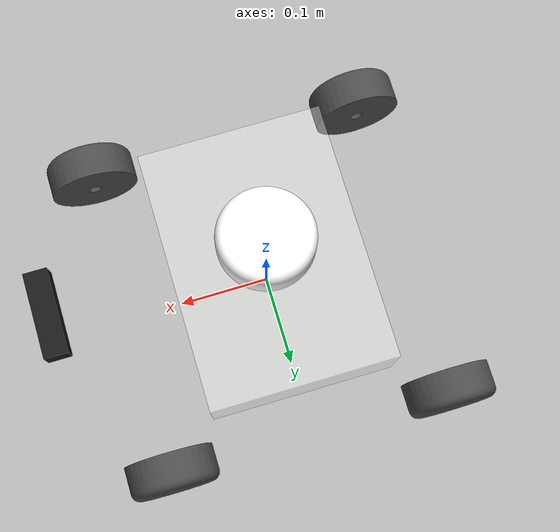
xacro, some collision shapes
<?xml version="1.0"?>
<!--
  Four-wheel skid-steer AMR with 2D LiDAR, IMU and front camera.
  Each component lives in its own file; edit or swap them independently.
-->
<robot name="skid_steer_amr" xmlns:xacro="http://www.ros.org/wiki/xacro">

  <xacro:include filename="$(find skid_steer_amr)/urdf/robot_core.xacro"/>      <!-- chassis + 4 wheels -->
  <xacro:include filename="$(find skid_steer_amr)/urdf/lidar.xacro"/>
  <xacro:include filename="$(find skid_steer_amr)/urdf/imu.xacro"/>
  <xacro:include filename="$(find skid_steer_amr)/urdf/camera.xacro"/>
  <xacro:include filename="$(find skid_steer_amr)/urdf/gazebo_control.xacro"/>  <!-- skid-steer drive plugin -->

</robot>

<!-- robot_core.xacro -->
<robot xmlns:xacro="http://www.ros.org/wiki/xacro">

  <!--  Dimensions (metres). base_link sits at wheel-axle height -->
  <xacro:property name="wheel_radius" value="0.05"/>
  <xacro:property name="wheel_width"  value="0.04"/>
  <xacro:property name="wheel_x"      value="0.16"/>  <!-- axle position, front (+) / rear (-) -->
  <xacro:property name="wheel_y"      value="0.16"/>  <!-- joint position, left (+) / right (-) -->
  <xacro:property name="wheel_offset" value="0.02"/>  <!-- wheel centre sits this far outboard of its joint -->

  <!--  Chassis                                                 -->
  <link name="base_link">
    <inertial>
      <origin xyz="0 0 0.080606" rpy="0 0 0"/>
      <mass value="20"/>
      <inertia ixx="0.5403" ixy="0" ixz="0" iyy="1.158" iyz="0" izz="1.4784"/>
    </inertial>
    <visual>
      <geometry>
        <mesh filename="package://skid_steer_amr/meshes/base_link.STL"/>
      </geometry>
      <material name="chassis_white">
        <color rgba="1 1 1 0.35"/>
      </material>
    </visual>
    <!-- NOTE: simplified box, smaller than the 0.50 x 0.40 m visual chassis.
         See README "Known limitations". -->
    <collision>
      <origin xyz="0 0 0.08" rpy="0 0 0"/>
      <geometry>
        <box size="0.20 0.28 0.08"/>
      </geometry>
    </collision>
  </link>

  <!--  Wheel macro                                             -->
  <!--    name: flw / frw / rlw / rrw  (front/rear, left/right) -->
  <!--    x:    +1 front, -1 rear                               -->
  <!--    side: +1 left,  -1 right                              -->
  <xacro:macro name="wheel" params="name x side">
    <link name="${name}_link">
      <inertial>
        <origin xyz="0 ${side * 0.019741} 0" rpy="0 0 0"/>
        <mass value="0.37917"/>
        <inertia ixx="0.00028454" ixy="0" ixz="0" iyy="0.00047097" iyz="0" izz="0.00028454"/>
      </inertial>
      <visual>
        <geometry>
          <mesh filename="package://skid_steer_amr/meshes/${name}_link.STL"/>
        </geometry>
        <material name="wheel_grey">
          <color rgba="0.29804 0.29804 0.29804 1"/>
        </material>
      </visual>
      <collision>
        <!-- cylinder axis is Z by default; rotate it onto the axle (Y) -->
        <origin xyz="0 ${side * wheel_offset} 0" rpy="${pi/2} 0 0"/>
        <geometry>
          <cylinder radius="${wheel_radius}" length="${wheel_width}"/>
        </geometry>
      </collision>
    </link>

    <joint name="${name}_joint" type="continuous">
      <parent link="base_link"/>
      <child link="${name}_link"/>
      <origin xyz="${x * wheel_x} ${side * wheel_y} 0" rpy="0 0 0"/>
      <axis xyz="0 1 0"/>
      <limit effort="100" velocity="20"/>
    </joint>

    <gazebo reference="${name}_link">
      <mu1>0.3</mu1>
      <mu2>1.0</mu2>
      <fdir1>0 0 1</fdir1>
      <kp>500000</kp>
      <kd>50</kd>
    </gazebo>
  </xacro:macro>

  <xacro:wheel name="flw" x="1"  side="1"/>
  <xacro:wheel name="frw" x="1"  side="-1"/>
  <xacro:wheel name="rlw" x="-1" side="1"/>
  <xacro:wheel name="rrw" x="-1" side="-1"/>

</robot>

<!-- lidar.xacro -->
<robot xmlns:xacro="http://www.ros.org/wiki/xacro">

  <!-- 360 deg 2D LiDAR on top of the chassis. Publishes /scan (sensor_msgs/LaserScan). -->

  <link name="lidar_link">
    <visual>
      <geometry>
        <mesh filename="package://skid_steer_amr/meshes/lidar_link.STL"/>
      </geometry>
      <material name="lidar_white">
        <color rgba="1 1 1 1"/>
      </material>
    </visual>
    <collision>
      <geometry>
        <mesh filename="package://skid_steer_amr/meshes/lidar_link.STL"/>
      </geometry>
    </collision>
  </link>

  <joint name="lidar_joint" type="fixed">
    <parent link="base_link"/>
    <child link="lidar_link"/>
    <origin xyz="0 0 0.17098" rpy="0 0 0"/>  <!-- scan plane height -->
  </joint>

  <gazebo reference="lidar_link">
    <sensor name="lidar" type="ray">
      <always_on>true</always_on>
      <visualize>true</visualize>
      <update_rate>10</update_rate>
      <ray>
        <scan>
          <horizontal>
            <samples>720</samples>
            <resolution>1</resolution>
            <min_angle>-3.14159</min_angle>
            <max_angle>3.14159</max_angle>
          </horizontal>
        </scan>
        <range>
          <min>0.12</min>
          <max>12.0</max>
          <resolution>0.01</resolution>
        </range>
        <noise>
          <type>gaussian</type>
          <mean>0.0</mean>
          <stddev>0.01</stddev>
        </noise>
      </ray>
      <plugin name="gazebo_ros_laser" filename="libgazebo_ros_ray_sensor.so">
        <ros>
          <remapping>~/out:=scan</remapping>
        </ros>
        <output_type>sensor_msgs/LaserScan</output_type>
        <frame_name>lidar_link</frame_name>
      </plugin>
    </sensor>
  </gazebo>

</robot>

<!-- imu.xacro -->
<robot xmlns:xacro="http://www.ros.org/wiki/xacro">

  <!-- IMU inside the chassis. Publishes /imu/data (sensor_msgs/Imu). -->

  <!-- Noise standard deviations (0 = ideal sensor) -->
  <xacro:property name="imu_gyro_stddev"  value="0.0"/>
  <xacro:property name="imu_accel_stddev" value="0.0"/>

  <link name="imu_link">
    <inertial>
      <mass value="0.05"/>
      <inertia ixx="0.0001" ixy="0" ixz="0" iyy="0.0001" iyz="0" izz="0.0001"/>
    </inertial>
  </link>

  <joint name="imu_joint" type="fixed">
    <parent link="base_link"/>
    <child link="imu_link"/>
    <origin xyz="0 0 0.10" rpy="0 0 0"/>
  </joint>

  <xacro:macro name="gaussian" params="stddev">
    <noise type="gaussian">
      <mean>0.0</mean>
      <stddev>${stddev}</stddev>
    </noise>
  </xacro:macro>

  <gazebo reference="imu_link">
    <sensor name="imu_sensor" type="imu">
      <always_on>true</always_on>
      <update_rate>100</update_rate>
      <visualize>true</visualize>
      <imu>
        <angular_velocity>
          <x><xacro:gaussian stddev="${imu_gyro_stddev}"/></x>
          <y><xacro:gaussian stddev="${imu_gyro_stddev}"/></y>
          <z><xacro:gaussian stddev="${imu_gyro_stddev}"/></z>
        </angular_velocity>
        <linear_acceleration>
          <x><xacro:gaussian stddev="${imu_accel_stddev}"/></x>
          <y><xacro:gaussian stddev="${imu_accel_stddev}"/></y>
          <z><xacro:gaussian stddev="${imu_accel_stddev}"/></z>
        </linear_acceleration>
      </imu>
      <plugin name="imu_plugin" filename="libgazebo_ros_imu_sensor.so">
        <ros>
          <remapping>~/out:=imu/data</remapping>
        </ros>
        <frame_name>imu_link</frame_name>
      </plugin>
    </sensor>
  </gazebo>

</robot>

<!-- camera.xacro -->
<robot xmlns:xacro="http://www.ros.org/wiki/xacro">

  <!--  Front camera: mount pose relative to base_link (edit to   -->
  <!--  move the camera). The chassis nose slopes from z=0.126    -->
  <!--  at x=0.21 to z=0.112 at the front edge (x=0.25).          -->
  <!--  Keep the body below the LiDAR scan plane (z=0.171) so it  -->
  <!--  does not block /scan.                                     -->
  <xacro:property name="cam_x"     value="0.23"/>
  <xacro:property name="cam_y"     value="0.0"/>
  <xacro:property name="cam_z"     value="0.128"/>  <!-- sits on the sloped nose -->
  <xacro:property name="cam_pitch" value="0.0"/>    <!-- positive = tilt down -->

  <!-- Camera body: X forward, Y left, Z up (REP-103) -->
  <link name="camera_link">
    <visual>
      <geometry>
        <box size="0.025 0.09 0.025"/>
      </geometry>
      <material name="camera_black">
        <color rgba="0.1 0.1 0.1 1"/>
      </material>
    </visual>
    <collision>
      <geometry>
        <box size="0.025 0.09 0.025"/>
      </geometry>
    </collision>
    <inertial>
      <mass value="0.05"/>
      <inertia ixx="0.00004" ixy="0" ixz="0" iyy="0.00001" iyz="0" izz="0.00004"/>
    </inertial>
  </link>

  <joint name="camera_joint" type="fixed">
    <parent link="base_link"/>
    <child link="camera_link"/>
    <origin xyz="${cam_x} ${cam_y} ${cam_z}" rpy="0 ${cam_pitch} 0"/>
  </joint>

  <!-- Optical frame: Z forward, X right, Y down (image convention).
       Image and CameraInfo messages are stamped with this frame. -->
  <link name="camera_optical_frame"/>

  <joint name="camera_optical_joint" type="fixed">
    <parent link="camera_link"/>
    <child link="camera_optical_frame"/>
    <origin xyz="0 0 0" rpy="${-pi/2} 0 ${-pi/2}"/>
  </joint>

</robot>
